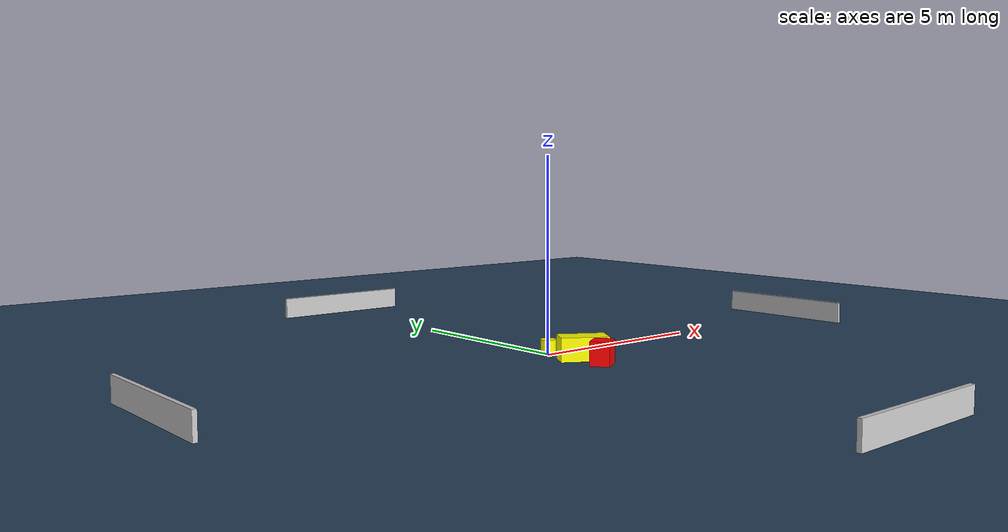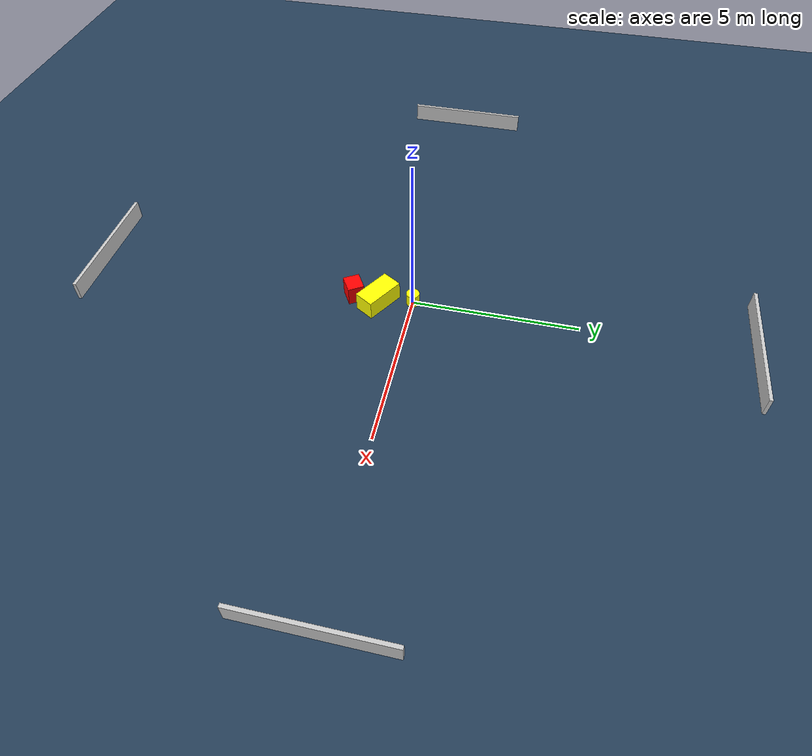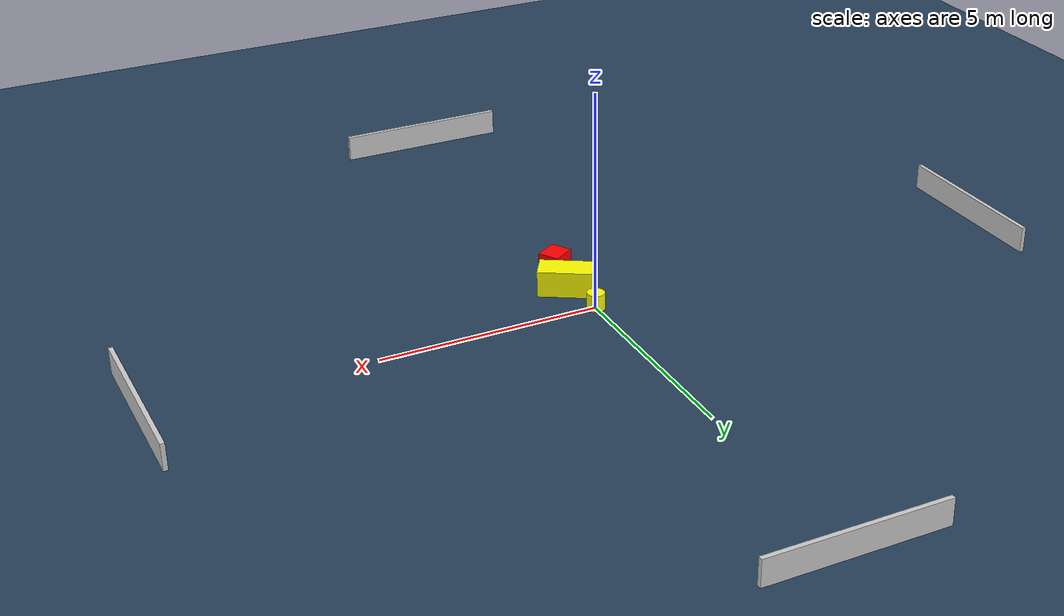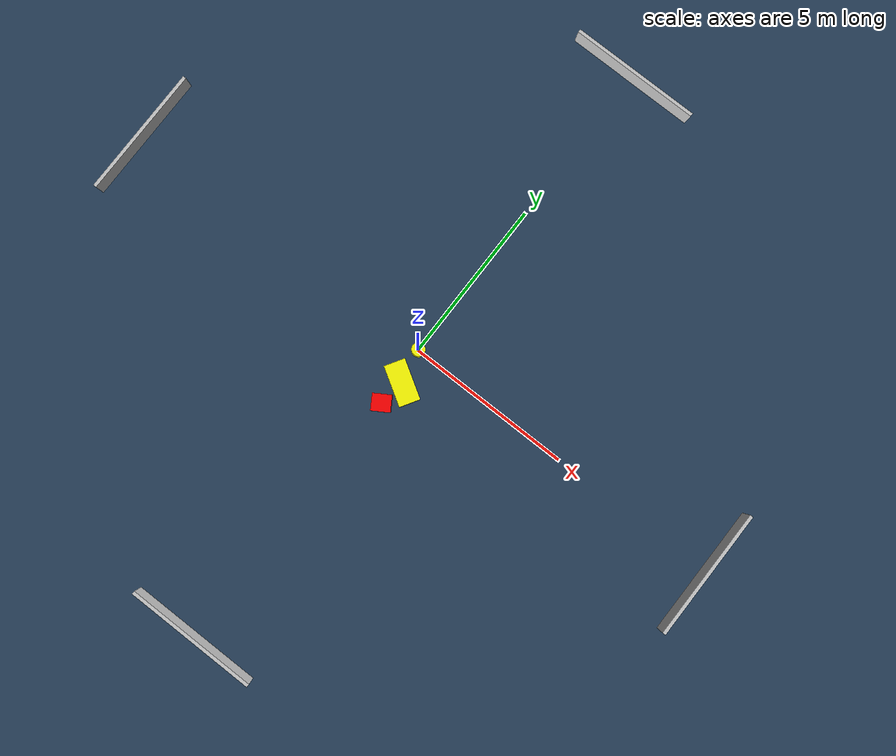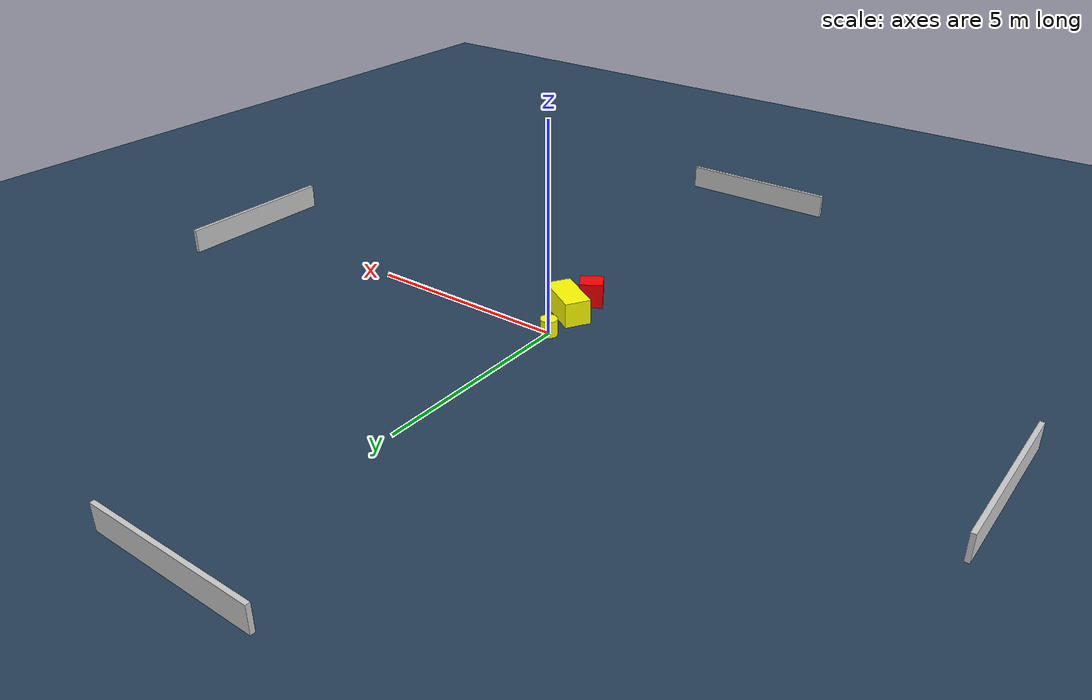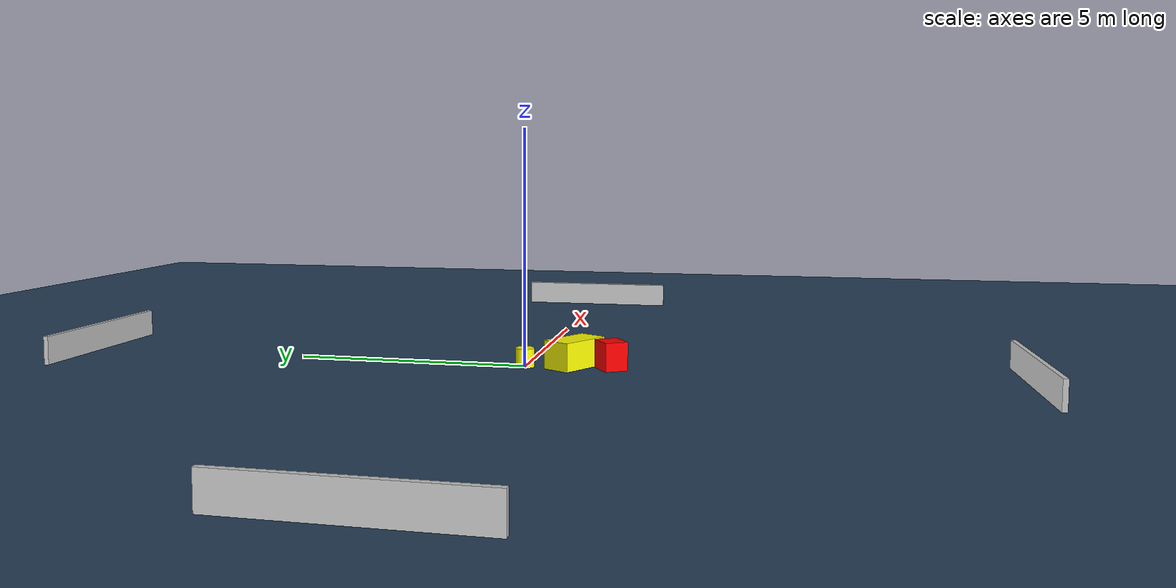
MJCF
<?xml version="1.0" ?>
<mujoco model="generated_environment">
  <option timestep="0.01" integrator="RK4" cone="elliptic"/>
  <default>
    <geom density="1"/>
  </default>
  <asset>
    <texture builtin="gradient" height="3072" name="skybox" rgb1="0.3 0.5 0.7" rgb2="0 0 0" type="skybox" width="512"/>
    <texture builtin="checker" height="300" name="groundplane" rgb1="0.2 0.3 0.4" rgb2="0.1 0.2 0.3" type="2d" width="300"/>
    <material name="groundplane" reflectance="0.2" texrepeat="5 5" texture="groundplane"/>
  </asset>
  <worldbody>
    <light dir="0 0 -1" directional="true" pos="0 0 1.5"/>
    <geom condim="3" friction="0.5 0.005 0.001" material="groundplane" name="floor" pos="0 0 0" size="0 0 0.05" type="plane"/>
    <body name="walls">
      <geom name="wall_1" condim="4" pos="-10.0 0.0 0.3" rgba="0.800000011920929 0.800000011920929 0.800000011920929 1.0" size="0.05 2.0 0.3" type="box"/>
      <geom name="wall_2" condim="4" pos="10.0 0.0 0.3" rgba="0.800000011920929 0.800000011920929 0.800000011920929 1.0" size="0.05 2.0 0.3" type="box"/>
      <geom name="wall_3" condim="4" pos="0.0 -10.0 0.3" rgba="0.800000011920929 0.800000011920929 0.800000011920929 1.0" size="2.0 0.05 0.3" type="box"/>
      <geom name="wall_4" condim="4" pos="0.0 10.0 0.3" rgba="0.800000011920929 0.800000011920929 0.800000011920929 1.0" size="2.0 0.05 0.3" type="box"/>
    </body>
    <body name="robot">
      <joint name="joint_x" type="slide" pos="0 0 0" axis="1 0 0"/>
      <joint name="joint_y" type="slide" pos="0 0 0" axis="0 1 0"/>
      <geom name="robot" type="cylinder" pos="0.0 0.0 0.2" size="0.2 0.2 0.0" mass="5.0" friction="1.0 0.005 0.0001" condim="4" rgba="1.0 1.0 0.0 1.0"/>
    </body>
    <body name="obstacle_1_movable">
      <geom name="obstacle_1_movable" condim="4" pos="0.22295432393415748 -1.0219973887528566 0.3" euler="0 0 328.7070837469672" friction="0.0 0.005 0.001" rgba="1.0 1.0 0.0 1.0" size="0.6075157165069022 0.3130764903511766 0.3" type="box" mass="0.1"/>
      <joint type="free"/>
    </body>
    <body name="obstacle_2_static">
      <geom name="obstacle_2_static" condim="4" pos="0.10973994752496595 -1.8110346843499348 0.3" euler="0 0 301.9688058986197" friction="0.0 0.005 0.001" rgba="1.0 0.0 0.0 1.0" size="0.24775560573417374 0.2783388742880827 0.3" type="box"/>
    </body>
  </worldbody>
  <actuator>
    <motor name="actuator_x" joint="joint_x" gear="1" ctrlrange="-1 1"/>
    <motor name="actuator_y" joint="joint_y" gear="1" ctrlrange="-1 1"/>
  </actuator>
</mujoco>
